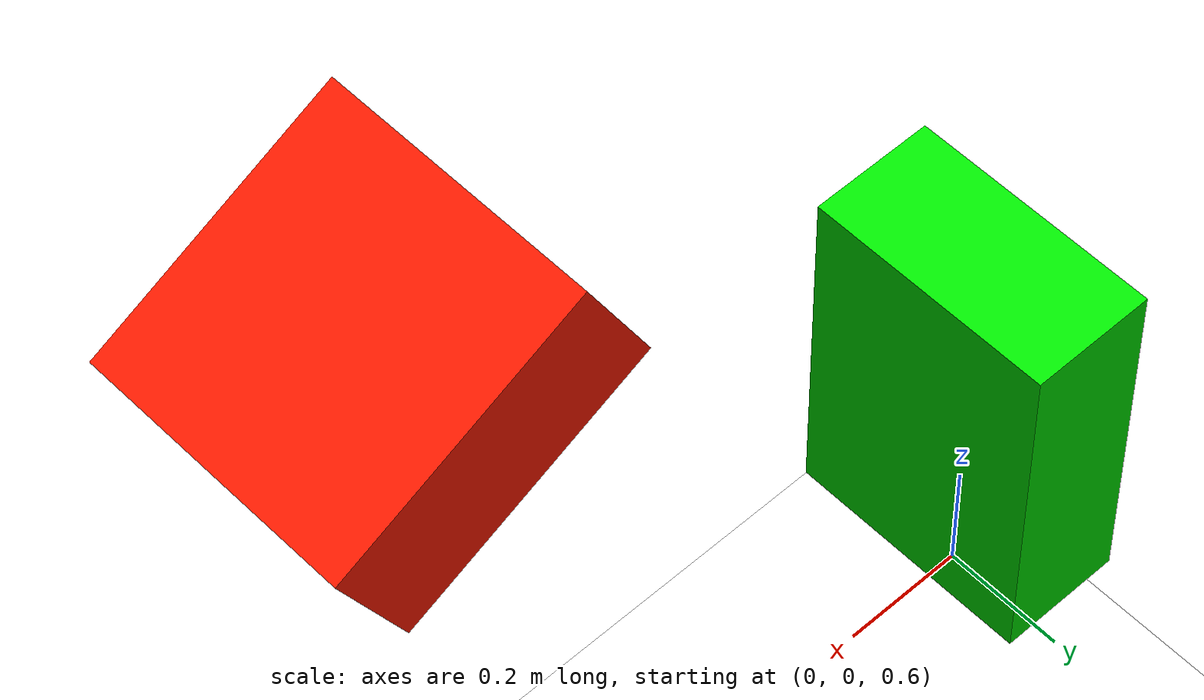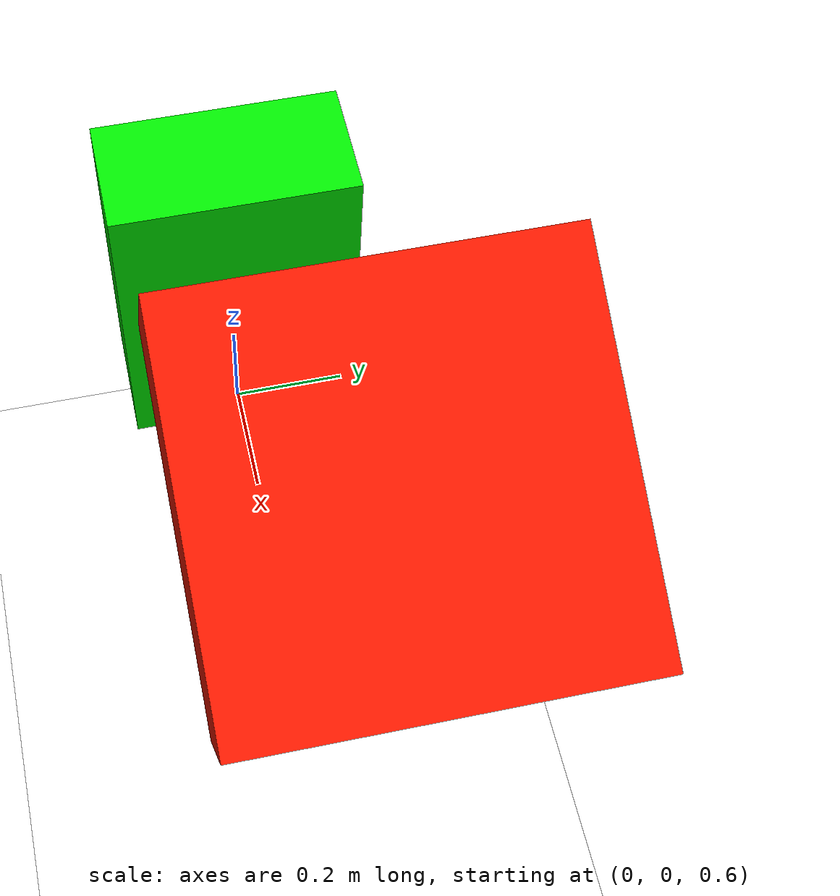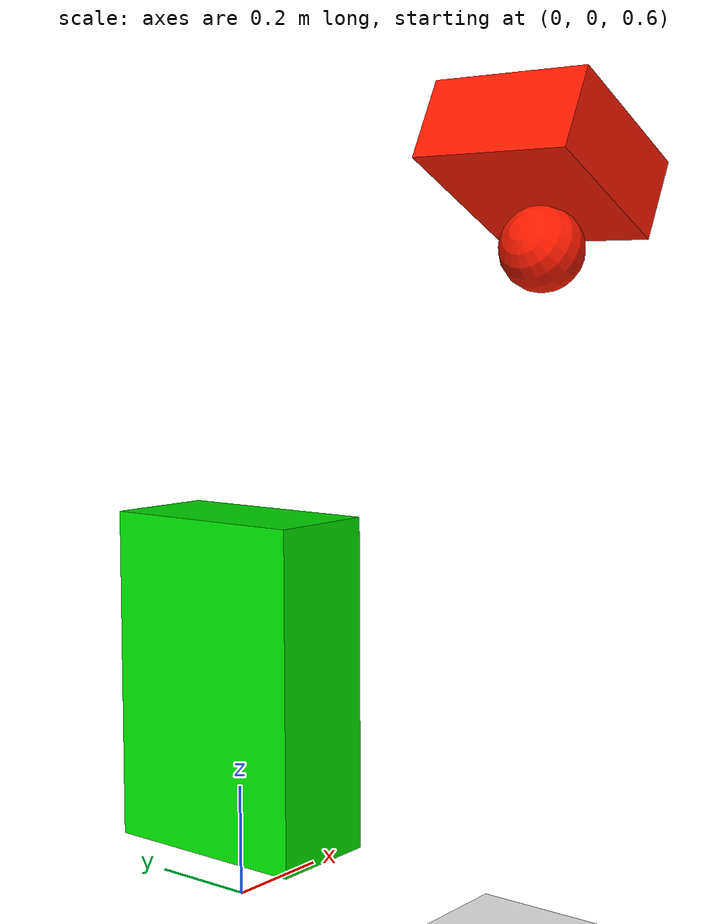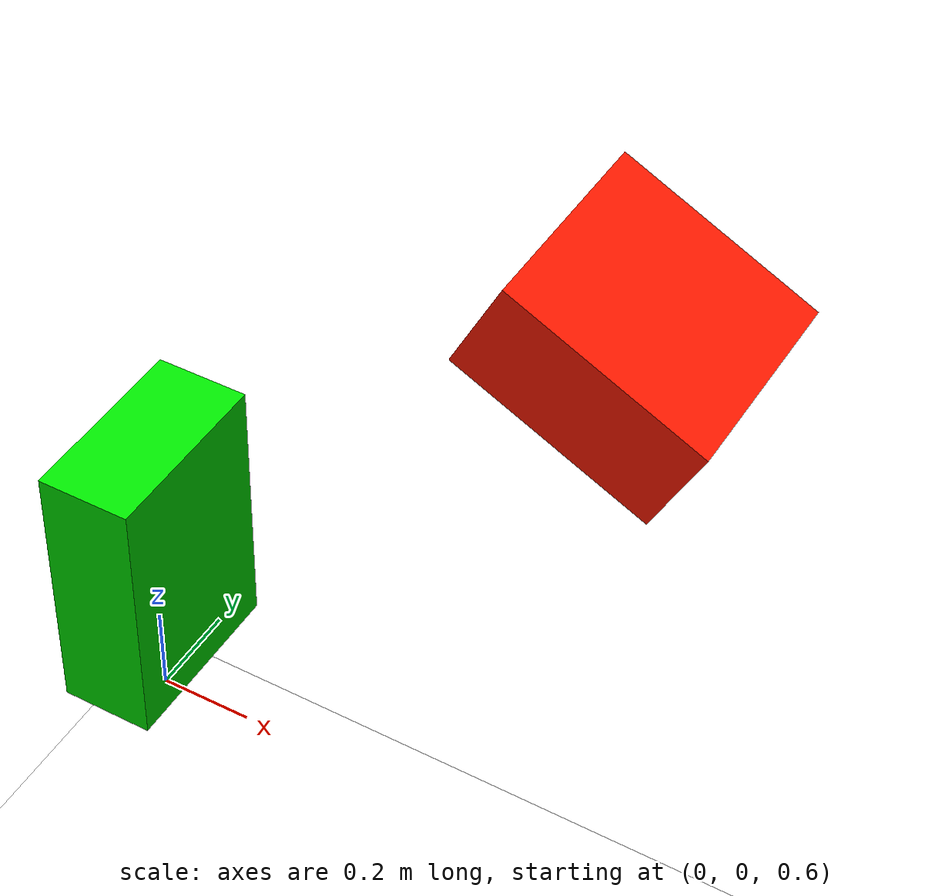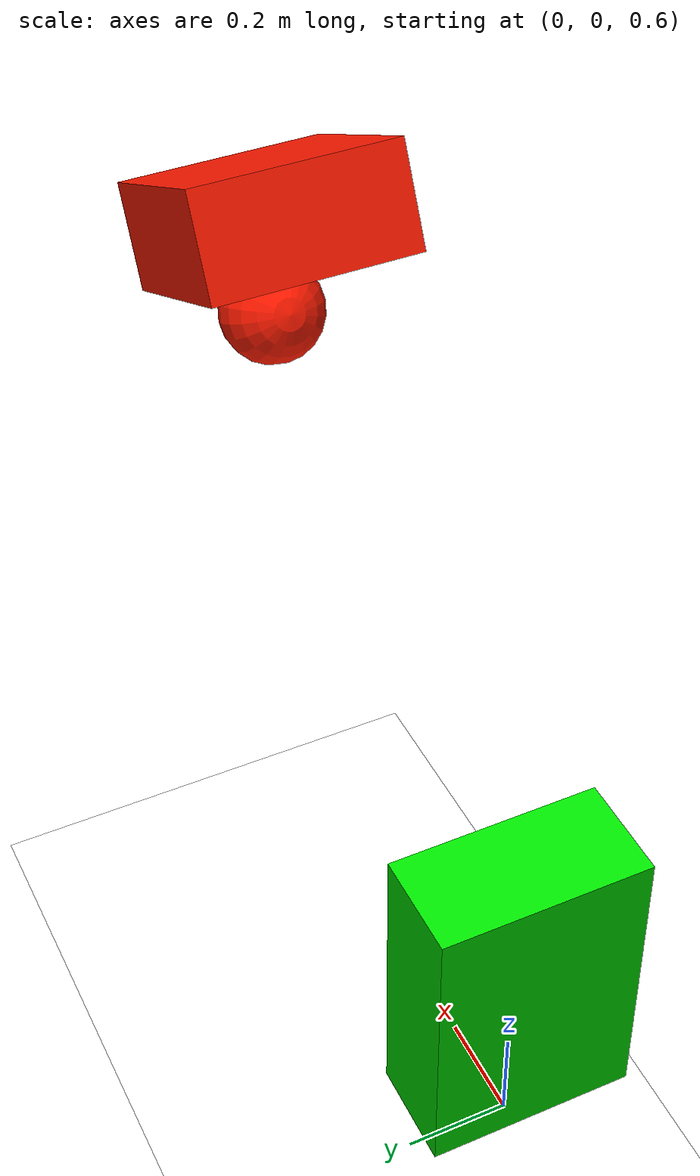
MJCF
<mujoco>
      <!-- set some defaults for units and lighting -->
      <compiler angle="radian" meshdir="meshes"/>

      <!-- 导入STL文件 -->
    <option gravity='0 0.1 -0.2'/>
    <worldbody>
      <light diffuse="1.5 .5 1.5" pos="0 0 5" dir="0 0.2 -1"/>
      <geom type="plane" size="10 10 0.1" rgba="1 1 1 1"/>
      <body pos="0 0 1">
        <joint type="free"/>
        <geom type="box" size=".1 .2 .3" rgba="0 .9 0 1"/>
      </body>
      <body pos="1 0 2" euler='0 90 0'>
        <joint type="free"/>
        <geom type="box" size=".1 .2 .2" rgba="1 .1 0 1"/>
      </body>
      <body pos="1 0 1.8" euler='0 90 0'>
        <joint type="free"/>
        <geom type="sphere" size=".1" rgba="1 .1 0 1"/>
      </body>
    </worldbody>
  </mujoco>
